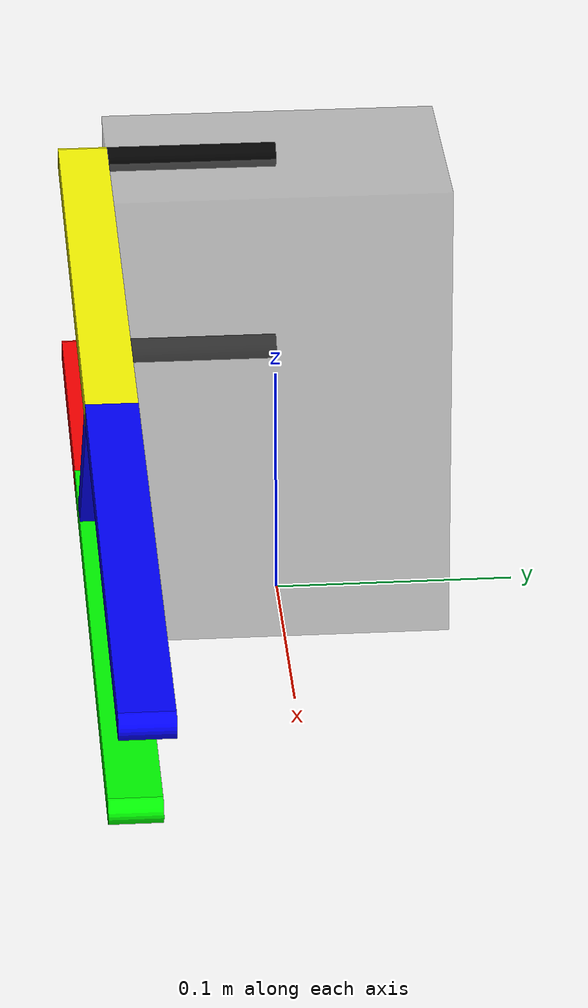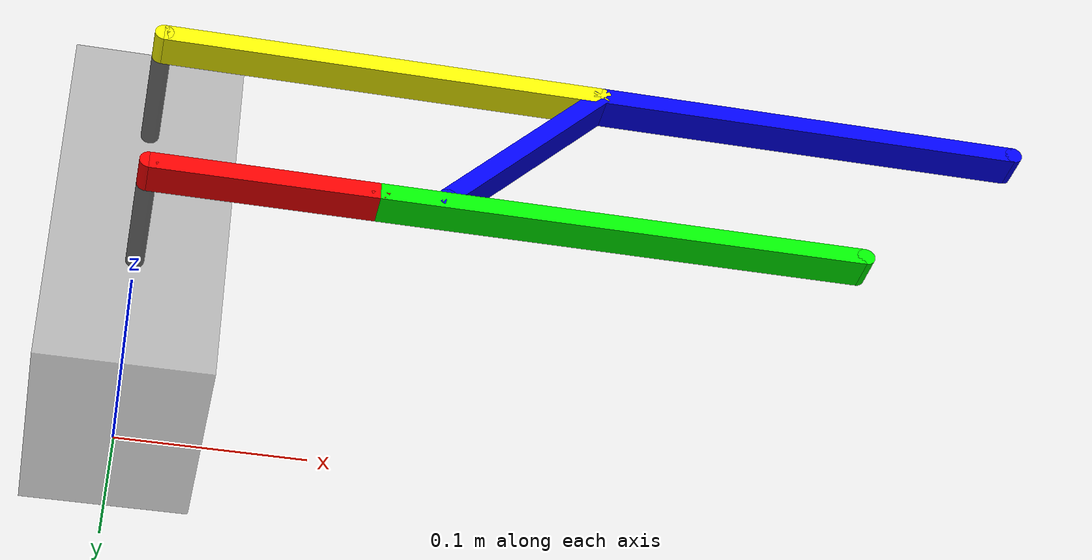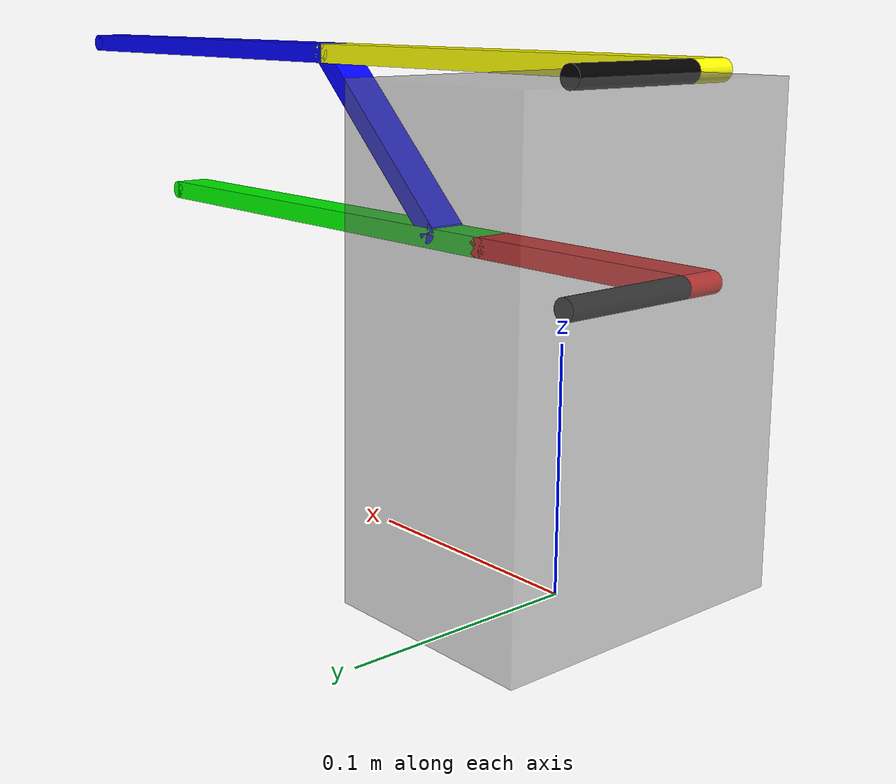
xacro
<?xml version="1.0"?>
<robot xmlns:xacro="http://ros.org/wiki/xacro" name="dummy_five_bar">

  <!-- Import control_xacro -->

  <xacro:arg name="world_xyz" default="0 0 0"/>
  <xacro:property name="world_xyz" value="$(arg world_xyz)"/>

  <xacro:arg name="world_rpy" default="0 0 0"/>
  <xacro:property name="world_rpy" value="$(arg world_rpy)"/>
  <!-- Generic Joint and Link Names which correspond to Five-Bar frames -->
  <!-- Arguments -->
  <xacro:arg name="reflect" default="1"/>
  <xacro:arg name="prefix" default=""/>

  <xacro:arg name="dh_d1" default="0.2"/>
  <xacro:arg name="j2_axis_offset" default="${69/1000}"/>

  <!-- Five-Bar Mechanism Parameters (in meters) -->
  <xacro:arg name="L_l1" default="0.240"/>      <!-- Length of link 1 -->
  <xacro:arg name="L_l2" default="0.240"/>      <!-- Length of link 2 -->
  <xacro:arg name="L_c1" default="0.120"/>      <!-- Length of coupler 1 -->
  <xacro:arg name="L_c2" default="0.265"/>      <!-- Length of coupler 2 -->
  <xacro:arg name="L_shoulder" default="0.087"/> <!-- Shoulder offset length -->
  <xacro:arg name="L_elbow" default="0.120"/>   <!-- Elbow offset length -->
  <xacro:arg name="theta_elbow_offset" default="0.785398"/> <!-- Elbow offset angle in radians (45 degrees) -->

  <!-- Properties -->
  <xacro:property name="reflect" value="$(arg reflect)"/>
  <xacro:property name="prefix" value="$(arg prefix)"/>

  <xacro:property name="dh_d1" value="$(arg dh_d1)"/>
  <xacro:property name="j2_axis_offset" value="$(arg j2_axis_offset)"/>

  <xacro:property name="L_l1" value="$(arg L_l1)"/>
  <xacro:property name="L_l2" value="$(arg L_l2)"/>
  <xacro:property name="L_c1" value="$(arg L_c1)"/>
  <xacro:property name="L_c2" value="$(arg L_c2)"/>
  <xacro:property name="L_shoulder" value="$(arg L_shoulder)"/>
  <xacro:property name="L_elbow" value="$(arg L_elbow)"/>
  <xacro:property name="theta_elbow_offset" value="$(arg theta_elbow_offset)"/>

  <xacro:property name="link_width" value="0.01"/>
  <xacro:property name="upper_arm_width" value="0.03"/>
  <xacro:property name="fore_arm_width" value="0.02"/>

  <xacro:property name="link_thickness" value="${20/1000}"/>

  <!-- Link Colors -->
  <xacro:property name="base_color" value="0.8 0.8 0.8 1"/>      <!-- Light gray for base -->
  <xacro:property name="shoulder_color" value="0 0 0 1"/>          <!-- Blue for shoulder -->
  <xacro:property name="c1_color" value="1 0 0 1"/>           <!-- Red for couplers -->
  <xacro:property name="c2_color" value="0 1 0 1"/>         <!-- Green for upper arm -->
  <xacro:property name="l1_color" value="1 1 0 1"/>          <!-- Yellow for fore arm -->
  <xacro:property name="l2_color" value="0 0 1 1"/>          <!-- Blue for fore arm -->
  <xacro:property name="end_effector_color" value="1 0 1 1"/>      <!-- Magenta for end effector -->

  <xacro:macro name="slot_link" params="name link_width link_length link_thickness color">
  <!-- Length goes along y, width goes along x, thickness goes along z -->
    <link name="${name}">
      <visual>
        <origin xyz="0 0 ${link_thickness/2}" rpy="0 0 0"/>
        <geometry>
          <cylinder radius="${link_width/2}" length="${link_thickness}"/>
        </geometry>
        <material name="${name}_material"><color rgba="${color}"/></material>
      </visual>

      <visual>
        <origin xyz="0 ${link_length/2} ${link_thickness/2}" rpy="0 0 0"/>
        <geometry>
          <box size="${link_width} ${link_length} ${link_thickness}"/>
        </geometry>
        <material name="${name}_material"><color rgba="${color}"/></material>
      </visual>

      <visual>
        <origin xyz="0 ${link_length} ${link_thickness/2}" rpy="0 0 0"/>
        <geometry>
          <cylinder radius="${link_width/2}" length="${link_thickness}"/>
        </geometry>
        <material name="${name}_material"><color rgba="${color}"/></material>
      </visual>
    </link>
  </xacro:macro>

  <link name="world"/>

    <joint name="world_to_base" type="fixed">
        <origin xyz="${world_xyz}" rpy="${world_rpy}"/>
        <parent link="world"/>
        <child link="base_link"/>
    </joint>

  <!-- Base Link -->
  <link name="base_link"/>

  <joint name="${prefix}joint_1" type="revolute">
    <parent link="base_link"/>
    <child link="${prefix}link_0"/>
    <origin xyz="0 0 0" rpy="0 0 ${pi}"/>
    <axis xyz="0 0 1"/>
    <limit lower="${-pi}" upper="${pi}" velocity="100" effort="100"/>
  </joint>

  <link name="${prefix}link_0">
    <visual>
      <origin xyz="0 0 ${dh_d1/2}" rpy="0 0 0"/>
      <geometry>
        <box size="${90/1000} ${j2_axis_offset*2} ${dh_d1}"/>
      </geometry>
      <material name="blue"><color rgba="0.5 0.5 0.5 0.5"/></material>
    </visual>
  </link>

  <joint name="${prefix}joint_2" type="fixed">
    <parent link="${prefix}link_0"/>
    <child link="${prefix}five_bar_base"/>
    <origin xyz="0 ${j2_axis_offset} ${dh_d1}" rpy="${-pi/2} 0 0"/>
  </joint>

  <link name="${prefix}five_bar_base">
  </link>

  <joint name="${prefix}five_bar_base_to_shoulder" type="fixed">
      <parent link="${prefix}five_bar_base"/>
      <child link="${prefix}shoulder"/>
      <origin xyz="0 0 0" rpy="0 0 ${pi/2}"/>
    </joint>

  <link name="${prefix}shoulder">
    <visual>
      <origin xyz="0 0 ${-j2_axis_offset/2}" rpy="0 0 0"/>
      <geometry>
        <cylinder radius="${link_width/2}" length="${j2_axis_offset}"/>
      </geometry>
      <material name="shoulder_material"><color rgba="${shoulder_color}"/></material>
    </visual>

    <visual>
      <origin xyz="${L_shoulder} 0 ${-j2_axis_offset/2}" rpy="0 0 0"/>
      <geometry>
        <cylinder radius="${link_width/2}" length="${j2_axis_offset}"/>
      </geometry>
      <material name="shoulder_material"><color rgba="${shoulder_color}"/></material>
    </visual>
  </link>

  <joint name="${prefix}shoulder_to_J2" type="fixed">
    <parent link="${prefix}shoulder"/>
    <child link="${prefix}J2"/>
    <origin xyz="0 0 0" rpy="0 0 0"/>
  </joint>

  <link name="${prefix}J2">
  </link>

  <joint name="${prefix}shoulder_to_C1" type="revolute">
    <parent link="${prefix}shoulder"/>
    <child link="${prefix}C1"/>
    <origin xyz="${L_shoulder} 0 0" rpy="0 0 0"/>
    <axis xyz="0 0 1"/>
    <limit lower="${-pi}" upper="${pi}" velocity="100" effort="100"/>
  </joint>

  <!-- Usage example: -->
  <xacro:slot_link
    name="${prefix}C1"
    link_width="${link_width}"
    link_length="${L_c1}"
    link_thickness="${link_thickness}"
    color="${c1_color}"
  />

  <joint name="${prefix}C1_to_C2" type="revolute">
    <parent link="${prefix}C1"/>
    <child link="${prefix}C2"/>
    <origin xyz="0 ${L_c1} 0" rpy="0 0 0"/>
    <axis xyz="0 0 1"/>
    <limit lower="${-pi}" upper="${pi}" velocity="100" effort="100"/>
  </joint>

  <xacro:slot_link
    name="${prefix}C2"
    link_width="${link_width}"
    link_length="${L_c2}"
    link_thickness="${link_thickness}"
    color="${c2_color}"
  />

  <joint name="${prefix}shoulder_to_L1" type="revolute">
    <parent link="${prefix}shoulder"/>
    <child link="${prefix}L1"/>
    <origin xyz="0 0 0" rpy="0 0 0"/>
    <axis xyz="0 0 1"/>
    <limit lower="${-pi}" upper="${pi}" velocity="100" effort="100"/>
  </joint>

  <xacro:slot_link
    name="${prefix}L1"
    link_width="${link_width}"
    link_length="${L_l1}"
    link_thickness="${link_thickness}"
    color="${l1_color}"
  />

  <joint name="${prefix}L1_to_L2" type="revolute">
    <parent link="${prefix}L1"/>
    <child link="${prefix}L2"/>
    <origin xyz="0 ${L_l1} 0" rpy="0 0 0"/>
    <axis xyz="0 0 1"/>
    <limit lower="${-pi}" upper="${pi}" velocity="100" effort="100"/>
  </joint>

  <xacro:slot_link
    name="${prefix}L2"
    link_width="${link_width}"
    link_length="${L_l2}"
    link_thickness="${link_thickness}"
    color="${l2_color}"
  />

  <xacro:slot_link
    name="${prefix}elbow"
    link_width="${link_width}"
    link_length="${L_elbow}"
    link_thickness="${link_thickness}"
    color="${l2_color}"
  />

  <joint name="${prefix}L2_to_elbow" type="fixed">
    <parent link="${prefix}L2"/>
    <child link="${prefix}elbow"/>
    <origin xyz="0 0 0" rpy="0 0 -${pi - theta_elbow_offset}"/>
  </joint>

</robot>
